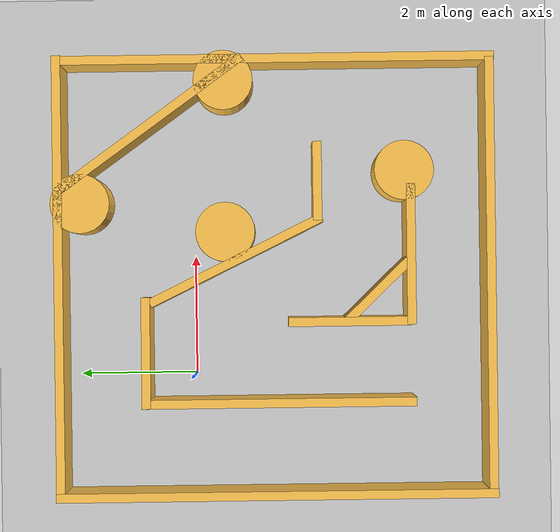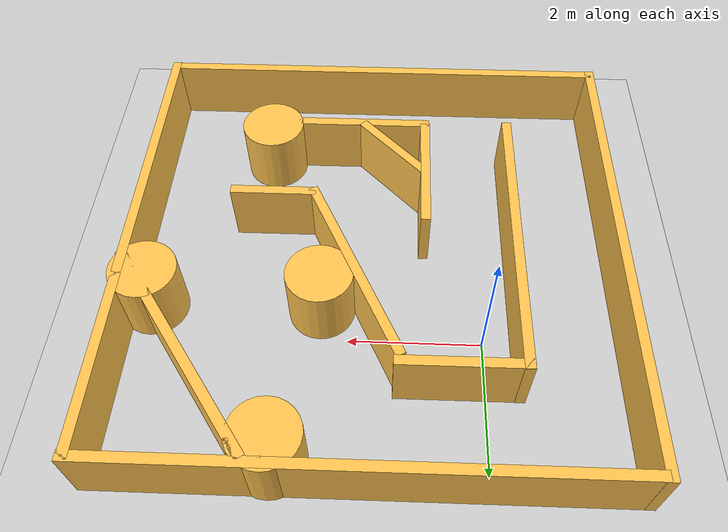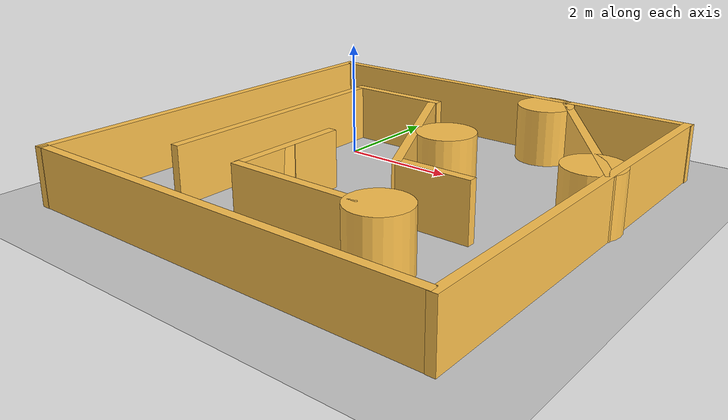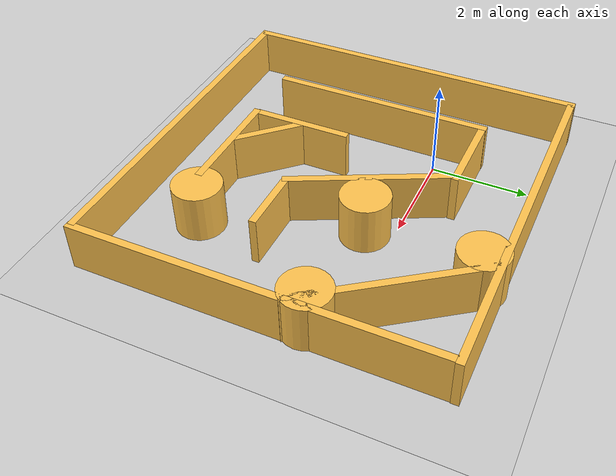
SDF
<sdf version="1.4">
 <world name="default">
  <plugin name="gazebo_ros_state" filename="libgazebo_ros_state.so">
   <ros><namespace>/pr2</namespace></ros>
  </plugin>
  <light name="sun" type="directional">
   <pose>0 0 10 0 -0 0</pose>
   <diffuse>0.8 0.8 0.8 1</diffuse>
   <specular>0.2 0.2 0.2 1</specular>
   <attenuation>
    <range>1000</range>
    <constant>0.9</constant>
    <linear>0.01</linear>
    <quadratic>0.001</quadratic>
   </attenuation>
   <direction>0.5 0.1 -0.9</direction>
  </light>
  <model name="ground_plane">
   <static>1</static>
   <link name="link">
    <collision name="collision">
     <geometry><plane><normal>0 0 1</normal><size>100 100</size></plane></geometry>
     <surface><friction><ode><mu>100</mu><mu2>50</mu2></ode></friction></surface>
    </collision>
    <visual name="visual">
     <cast_shadows>0</cast_shadows>
     <geometry><plane><normal>0 0 1</normal><size>100 100</size></plane></geometry>
     <material>
      <script><uri>file://media/materials/scripts/gazebo.material</uri><name>Gazebo/Grey</name></script>
     </material>
    </visual>
    <velocity_decay><linear>0</linear><angular>0</angular></velocity_decay>
   </link>
  </model>
  <scene><ambient>0.4 0.4 0.4 1</ambient><background>0.7 0.7 0.7 1</background><shadows>0</shadows></scene>
  <physics type="ode">
   <max_step_size>0.01</max_step_size>
   <real_time_factor>1</real_time_factor>
   <real_time_update_rate>0</real_time_update_rate>
   <gravity>0 0 -9.8</gravity>
  </physics>
  <include><uri>model://small_warehouse</uri><pose>2.4 -2.1 0 0 0 0</pose></include>
 </world>
</sdf>

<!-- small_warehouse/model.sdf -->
<sdf version='1.5'>
  <model name='small_warehouse'>
    <link name='Wall_10'>
      <pose frame=''>-2.02568 2.92333 0 0 -0 3.14159</pose>
      <self_collide>0</self_collide>
      <kinematic>0</kinematic>
      <visual name='Wall_10_Visual'>
        <pose frame=''>0 0 0.5 0 -0 0</pose>
        <geometry>
          <box>
            <size>1.8711 0.15 1</size>
          </box>
        </geometry>
        <material>
          <script>
            <uri>file://media/materials/scripts/gazebo.material</uri>
            <name>Gazebo/Grey</name>
          </script>
          <ambient>1 0.764706 0.305882 1</ambient>
          <diffuse>0.7 0.7 0.7 1</diffuse>
          <specular>0.01 0.01 0.01 1</specular>
          <emissive>0 0 0 1</emissive>
          <shader type='pixel'/>
        </material>
        <cast_shadows>1</cast_shadows>
        <transparency>0</transparency>
      </visual>
      <collision name='Wall_10_Collision'>
        <laser_retro>0</laser_retro>
        <max_contacts>10</max_contacts>
        <pose frame=''>0 0 0.5 0 -0 0</pose>
        <geometry>
          <box>
            <size>1.8711 0.15 1</size>
          </box>
        </geometry>
        <surface>
          <friction>
            <ode>
              <mu>1</mu>
              <mu2>1</mu2>
              <fdir1>0 0 0</fdir1>
              <slip1>0</slip1>
              <slip2>0</slip2>
            </ode>
          </friction>
          <bounce>
            <restitution_coefficient>0</restitution_coefficient>
            <threshold>1e+06</threshold>
          </bounce>
          <contact>
            <collide_without_contact>0</collide_without_contact>
            <collide_without_contact_bitmask>1</collide_without_contact_bitmask>
            <collide_bitmask>1</collide_bitmask>
            <ode>
              <soft_cfm>0</soft_cfm>
              <soft_erp>0.2</soft_erp>
              <kp>1e+13</kp>
              <kd>1</kd>
              <max_vel>0.01</max_vel>
              <min_depth>0</min_depth>
            </ode>
            <bullet>
              <split_impulse>1</split_impulse>
              <split_impulse_penetration_threshold>-0.01</split_impulse_penetration_threshold>
              <soft_cfm>0</soft_cfm>
              <soft_erp>0.2</soft_erp>
              <kp>1e+13</kp>
              <kd>1</kd>
            </bullet>
          </contact>
        </surface>
      </collision>
    </link>
    <link name='Wall_11'>
      <pose frame=''>-2.887 0.69235 0 0 0 -1.5708</pose>
      <self_collide>0</self_collide>
      <kinematic>0</kinematic>
      <visual name='Wall_11_Visual'>
        <pose frame=''>0 0 0.5 0 -0 0</pose>
        <geometry>
          <box>
            <size>4.62378 0.15 1</size>
          </box>
        </geometry>
        <material>
          <script>
            <uri>file://media/materials/scripts/gazebo.material</uri>
            <name>Gazebo/Grey</name>
          </script>
          <ambient>1 0.764706 0.305882 1</ambient>
          <diffuse>0.7 0.7 0.7 1</diffuse>
          <specular>0.01 0.01 0.01 1</specular>
          <emissive>0 0 0 1</emissive>
          <shader type='pixel'/>
        </material>
        <cast_shadows>1</cast_shadows>
        <transparency>0</transparency>
      </visual>
      <collision name='Wall_11_Collision'>
        <laser_retro>0</laser_retro>
        <max_contacts>10</max_contacts>
        <pose frame=''>0 0 0.5 0 -0 0</pose>
        <geometry>
          <box>
            <size>4.62378 0.15 1</size>
          </box>
        </geometry>
        <surface>
          <friction>
            <ode>
              <mu>1</mu>
              <mu2>1</mu2>
              <fdir1>0 0 0</fdir1>
              <slip1>0</slip1>
              <slip2>0</slip2>
            </ode>
          </friction>
          <bounce>
            <restitution_coefficient>0</restitution_coefficient>
            <threshold>1e+06</threshold>
          </bounce>
          <contact>
            <collide_without_contact>0</collide_without_contact>
            <collide_without_contact_bitmask>1</collide_without_contact_bitmask>
            <collide_bitmask>1</collide_bitmask>
            <ode>
              <soft_cfm>0</soft_cfm>
              <soft_erp>0.2</soft_erp>
              <kp>1e+13</kp>
              <kd>1</kd>
              <max_vel>0.01</max_vel>
              <min_depth>0</min_depth>
            </ode>
            <bullet>
              <split_impulse>1</split_impulse>
              <split_impulse_penetration_threshold>-0.01</split_impulse_penetration_threshold>
              <soft_cfm>0</soft_cfm>
              <soft_erp>0.2</soft_erp>
              <kp>1e+13</kp>
              <kd>1</kd>
            </bullet>
          </contact>
        </surface>
      </collision>
    </link>
    <link name='Wall_11_clone'>
      <pose frame=''>-4.44208 0.738947 0 0 0 -1.5708</pose>
      <self_collide>0</self_collide>
      <kinematic>0</kinematic>
      <visual name='ModelPreview_2::Wall_11_clone::Wall_11_Visual'>
        <pose frame=''>0 0 0.5 0 -0 0</pose>
        <geometry>
          <box>
            <size>7.42809 0.15 1</size>
          </box>
        </geometry>
        <material>
          <script>
            <uri>file://media/materials/scripts/gazebo.material</uri>
            <name>Gazebo/Grey</name>
          </script>
          <ambient>1 0.764706 0.305882 1</ambient>
          <diffuse>0.7 0.7 0.7 1</diffuse>
          <specular>0.01 0.01 0.01 1</specular>
          <emissive>0 0 0 1</emissive>
          <shader type='pixel'/>
        </material>
        <cast_shadows>1</cast_shadows>
        <transparency>0</transparency>
      </visual>
      <collision name='Wall_11_Collision'>
        <laser_retro>0</laser_retro>
        <max_contacts>10</max_contacts>
        <pose frame=''>0 0 0.5 0 -0 0</pose>
        <geometry>
          <box>
            <size>7.42809 0.15 1</size>
          </box>
        </geometry>
        <surface>
          <friction>
            <ode>
              <mu>1</mu>
              <mu2>1</mu2>
              <fdir1>0 0 0</fdir1>
              <slip1>0</slip1>
              <slip2>0</slip2>
            </ode>
          </friction>
          <bounce>
            <restitution_coefficient>0</restitution_coefficient>
            <threshold>1e+06</threshold>
          </bounce>
          <contact>
            <collide_without_contact>0</collide_without_contact>
            <collide_without_contact_bitmask>1</collide_without_contact_bitmask>
            <collide_bitmask>1</collide_bitmask>
            <ode>
              <soft_cfm>0</soft_cfm>
              <soft_erp>0.2</soft_erp>
              <kp>1e+13</kp>
              <kd>1</kd>
              <max_vel>0.01</max_vel>
              <min_depth>0</min_depth>
            </ode>
            <bullet>
              <split_impulse>1</split_impulse>
              <split_impulse_penetration_threshold>-0.01</split_impulse_penetration_threshold>
              <soft_cfm>0</soft_cfm>
              <soft_erp>0.2</soft_erp>
              <kp>1e+13</kp>
              <kd>1</kd>
            </bullet>
          </contact>
        </surface>
      </collision>
    </link>
    <link name='Wall_14'>
      <pose frame=''>-0.409926 -1.55115 0 0 -0 3.14159</pose>
      <self_collide>0</self_collide>
      <kinematic>0</kinematic>
      <visual name='Wall_14_Visual'>
        <pose frame=''>0 0 0.5 0 -0 0</pose>
        <geometry>
          <box>
            <size>2.36648 0.15 1</size>
          </box>
        </geometry>
        <material>
          <script>
            <uri>file://media/materials/scripts/gazebo.material</uri>
            <name>Gazebo/Grey</name>
          </script>
          <ambient>1 0.764706 0.305882 1</ambient>
          <diffuse>0.7 0.7 0.7 1</diffuse>
          <specular>0.01 0.01 0.01 1</specular>
          <emissive>0 0 0 1</emissive>
          <shader type='pixel'/>
        </material>
        <cast_shadows>1</cast_shadows>
        <transparency>0</transparency>
      </visual>
      <collision name='Wall_14_Collision'>
        <laser_retro>0</laser_retro>
        <max_contacts>10</max_contacts>
        <pose frame=''>0 0 0.5 0 -0 0</pose>
        <geometry>
          <box>
            <size>2.36648 0.15 1</size>
          </box>
        </geometry>
        <surface>
          <friction>
            <ode>
              <mu>1</mu>
              <mu2>1</mu2>
              <fdir1>0 0 0</fdir1>
              <slip1>0</slip1>
              <slip2>0</slip2>
            </ode>
          </friction>
          <bounce>
            <restitution_coefficient>0</restitution_coefficient>
            <threshold>1e+06</threshold>
          </bounce>
          <contact>
            <collide_without_contact>0</collide_without_contact>
            <collide_without_contact_bitmask>1</collide_without_contact_bitmask>
            <collide_bitmask>1</collide_bitmask>
            <ode>
              <soft_cfm>0</soft_cfm>
              <soft_erp>0.2</soft_erp>
              <kp>1e+13</kp>
              <kd>1</kd>
              <max_vel>0.01</max_vel>
              <min_depth>0</min_depth>
            </ode>
            <bullet>
              <split_impulse>1</split_impulse>
              <split_impulse_penetration_threshold>-0.01</split_impulse_penetration_threshold>
              <soft_cfm>0</soft_cfm>
              <soft_erp>0.2</soft_erp>
              <kp>1e+13</kp>
              <kd>1</kd>
            </bullet>
          </contact>
        </surface>
      </collision>
    </link>
    <link name='Wall_15'>
      <pose frame=''>-1.53187 -0.513425 0 0 -0 1.5708</pose>
      <self_collide>0</self_collide>
      <kinematic>0</kinematic>
      <visual name='Wall_15_Visual'>
        <pose frame=''>0 0 0.5 0 -0 0</pose>
        <geometry>
          <box>
            <size>2.06622 0.15 1</size>
          </box>
        </geometry>
        <material>
          <script>
            <uri>file://media/materials/scripts/gazebo.material</uri>
            <name>Gazebo/Grey</name>
          </script>
          <ambient>1 0.764706 0.305882 1</ambient>
          <diffuse>0.7 0.7 0.7 1</diffuse>
          <specular>0.01 0.01 0.01 1</specular>
          <emissive>0 0 0 1</emissive>
          <shader type='pixel'/>
        </material>
        <cast_shadows>1</cast_shadows>
        <transparency>0</transparency>
      </visual>
      <collision name='Wall_15_Collision'>
        <laser_retro>0</laser_retro>
        <max_contacts>10</max_contacts>
        <pose frame=''>0 0 0.5 0 -0 0</pose>
        <geometry>
          <box>
            <size>2.06622 0.15 1</size>
          </box>
        </geometry>
        <surface>
          <friction>
            <ode>
              <mu>1</mu>
              <mu2>1</mu2>
              <fdir1>0 0 0</fdir1>
              <slip1>0</slip1>
              <slip2>0</slip2>
            </ode>
          </friction>
          <bounce>
            <restitution_coefficient>0</restitution_coefficient>
            <threshold>1e+06</threshold>
          </bounce>
          <contact>
            <collide_without_contact>0</collide_without_contact>
            <collide_without_contact_bitmask>1</collide_without_contact_bitmask>
            <collide_bitmask>1</collide_bitmask>
            <ode>
              <soft_cfm>0</soft_cfm>
              <soft_erp>0.2</soft_erp>
              <kp>1e+13</kp>
              <kd>1</kd>
              <max_vel>0.01</max_vel>
              <min_depth>0</min_depth>
            </ode>
            <bullet>
              <split_impulse>1</split_impulse>
              <split_impulse_penetration_threshold>-0.01</split_impulse_penetration_threshold>
              <soft_cfm>0</soft_cfm>
              <soft_erp>0.2</soft_erp>
              <kp>1e+13</kp>
              <kd>1</kd>
            </bullet>
          </contact>
        </surface>
      </collision>
    </link>
    <link name='Wall_19'>
      <pose frame=''>0.837565 0.010614 0 0 -0 3.14159</pose>
      <self_collide>0</self_collide>
      <kinematic>0</kinematic>
      <visual name='Wall_19_Visual'>
        <pose frame=''>0 0 0.5 0 -0 0</pose>
        <geometry>
          <box>
            <size>1.32777 0.15 1</size>
          </box>
        </geometry>
        <material>
          <script>
            <uri>file://media/materials/scripts/gazebo.material</uri>
            <name>Gazebo/Grey</name>
          </script>
          <ambient>1 0.764706 0.305882 1</ambient>
          <diffuse>0.7 0.7 0.7 1</diffuse>
          <specular>0.01 0.01 0.01 1</specular>
          <emissive>0 0 0 1</emissive>
          <shader type='pixel'/>
        </material>
        <cast_shadows>1</cast_shadows>
        <transparency>0</transparency>
      </visual>
      <collision name='Wall_19_Collision'>
        <laser_retro>0</laser_retro>
        <max_contacts>10</max_contacts>
        <pose frame=''>0 0 0.5 0 -0 0</pose>
        <geometry>
          <box>
            <size>1.32777 0.15 1</size>
          </box>
        </geometry>
        <surface>
          <friction>
            <ode>
              <mu>1</mu>
              <mu2>1</mu2>
              <fdir1>0 0 0</fdir1>
              <slip1>0</slip1>
              <slip2>0</slip2>
            </ode>
          </friction>
          <bounce>
            <restitution_coefficient>0</restitution_coefficient>
            <threshold>1e+06</threshold>
          </bounce>
          <contact>
            <collide_without_contact>0</collide_without_contact>
            <collide_without_contact_bitmask>1</collide_without_contact_bitmask>
            <collide_bitmask>1</collide_bitmask>
            <ode>
              <soft_cfm>0</soft_cfm>
              <soft_erp>0.2</soft_erp>
              <kp>1e+13</kp>
              <kd>1</kd>
              <max_vel>0.01</max_vel>
              <min_depth>0</min_depth>
            </ode>
            <bullet>
              <split_impulse>1</split_impulse>
              <split_impulse_penetration_threshold>-0.01</split_impulse_penetration_threshold>
              <soft_cfm>0</soft_cfm>
              <soft_erp>0.2</soft_erp>
              <kp>1e+13</kp>
              <kd>1</kd>
            </bullet>
          </contact>
        </surface>
      </collision>
    </link>
    <link name='Wall_20'>
      <pose frame=''>-0.484506 1.39698 0 0 -0 2.02352</pose>
      <self_collide>0</self_collide>
      <kinematic>0</kinematic>
      <visual name='Wall_20_Visual'>
        <pose frame=''>0 0 0.5 0 -0 0</pose>
        <geometry>
          <box>
            <size>3.22686 0.15 1</size>
          </box>
        </geometry>
        <material>
          <script>
            <uri>file://media/materials/scripts/gazebo.material</uri>
            <name>Gazebo/Grey</name>
          </script>
          <ambient>1 0.764706 0.305882 1</ambient>
          <diffuse>0.7 0.7 0.7 1</diffuse>
          <specular>0.01 0.01 0.01 1</specular>
          <emissive>0 0 0 1</emissive>
          <shader type='pixel'/>
        </material>
        <cast_shadows>1</cast_shadows>
        <transparency>0</transparency>
      </visual>
      <collision name='Wall_20_Collision'>
        <laser_retro>0</laser_retro>
        <max_contacts>10</max_contacts>
        <pose frame=''>0 0 0.5 0 -0 0</pose>
        <geometry>
          <box>
            <size>3.22686 0.15 1</size>
          </box>
        </geometry>
        <surface>
          <friction>
            <ode>
              <mu>1</mu>
              <mu2>1</mu2>
              <fdir1>0 0 0</fdir1>
              <slip1>0</slip1>
              <slip2>0</slip2>
            </ode>
          </friction>
          <bounce>
            <restitution_coefficient>0</restitution_coefficient>
            <threshold>1e+06</threshold>
          </bounce>
          <contact>
            <collide_without_contact>0</collide_without_contact>
            <collide_without_contact_bitmask>1</collide_without_contact_bitmask>
            <collide_bitmask>1</collide_bitmask>
            <ode>
              <soft_cfm>0</soft_cfm>
              <soft_erp>0.2</soft_erp>
              <kp>1e+13</kp>
              <kd>1</kd>
              <max_vel>0.01</max_vel>
              <min_depth>0</min_depth>
            </ode>
            <bullet>
              <split_impulse>1</split_impulse>
              <split_impulse_penetration_threshold>-0.01</split_impulse_penetration_threshold>
              <soft_cfm>0</soft_cfm>
              <soft_erp>0.2</soft_erp>
              <kp>1e+13</kp>
              <kd>1</kd>
            </bullet>
          </contact>
        </surface>
      </collision>
    </link>
    <link name='Wall_24'>
      <pose frame=''>1.8412 2.79579 0 0 0 -0.948986</pose>
      <self_collide>0</self_collide>
      <kinematic>0</kinematic>
      <visual name='Wall_24_Visual'>
        <pose frame=''>0 0 0.5 0 -0 0</pose>
        <geometry>
          <box>
            <size>3.76645 0.15 1</size>
          </box>
        </geometry>
        <material>
          <script>
            <uri>file://media/materials/scripts/gazebo.material</uri>
            <name>Gazebo/Grey</name>
          </script>
          <ambient>1 0.764706 0.305882 1</ambient>
          <diffuse>0.7 0.7 0.7 1</diffuse>
          <specular>0.01 0.01 0.01 1</specular>
          <emissive>0 0 0 1</emissive>
          <shader type='pixel'/>
        </material>
        <cast_shadows>1</cast_shadows>
        <transparency>0</transparency>
      </visual>
      <collision name='Wall_24_Collision'>
        <laser_retro>0</laser_retro>
        <max_contacts>10</max_contacts>
        <pose frame=''>0 0 0.5 0 -0 0</pose>
        <geometry>
          <box>
            <size>3.76645 0.15 1</size>
          </box>
        </geometry>
        <surface>
          <friction>
            <ode>
              <mu>1</mu>
              <mu2>1</mu2>
              <fdir1>0 0 0</fdir1>
              <slip1>0</slip1>
              <slip2>0</slip2>
            </ode>
          </friction>
          <bounce>
            <restitution_coefficient>0</restitution_coefficient>
            <threshold>1e+06</threshold>
          </bounce>
          <contact>
            <collide_without_contact>0</collide_without_contact>
            <collide_without_contact_bitmask>1</collide_without_contact_bitmask>
            <collide_bitmask>1</collide_bitmask>
            <ode>
              <soft_cfm>0</soft_cfm>
              <soft_erp>0.2</soft_erp>
              <kp>1e+13</kp>
              <kd>1</kd>
              <max_vel>0.01</max_vel>
              <min_depth>0</min_depth>
            </ode>
            <bullet>
              <split_impulse>1</split_impulse>
              <split_impulse_penetration_threshold>-0.01</split_impulse_penetration_threshold>
              <soft_cfm>0</soft_cfm>
              <soft_erp>0.2</soft_erp>
              <kp>1e+13</kp>
              <kd>1</kd>
            </bullet>
          </contact>
        </surface>
      </collision>
    </link>
    <link name='Wall_24_clone'>
      <pose frame=''>-1.0172 -1.00075 0 0 0 -0.803995</pose>
      <self_collide>0</self_collide>
      <kinematic>0</kinematic>
      <visual name='ModelPreview_2::Wall_24_clone::Wall_24_Visual'>
        <pose frame=''>0 0 0.5 0 -0 0</pose>
        <geometry>
          <box>
            <size>1.5 0.15 1</size>
          </box>
        </geometry>
        <material>
          <script>
            <uri>file://media/materials/scripts/gazebo.material</uri>
            <name>Gazebo/Grey</name>
          </script>
          <ambient>1 0.764706 0.305882 1</ambient>
          <diffuse>0.7 0.7 0.7 1</diffuse>
          <specular>0.01 0.01 0.01 1</specular>
          <emissive>0 0 0 1</emissive>
          <shader type='pixel'/>
        </material>
        <cast_shadows>1</cast_shadows>
        <transparency>0</transparency>
      </visual>
      <collision name='Wall_24_Collision'>
        <laser_retro>0</laser_retro>
        <max_contacts>10</max_contacts>
        <pose frame=''>0 0 0.5 0 -0 0</pose>
        <geometry>
          <box>
            <size>1.5 0.15 1</size>
          </box>
        </geometry>
        <surface>
          <friction>
            <ode>
              <mu>1</mu>
              <mu2>1</mu2>
              <fdir1>0 0 0</fdir1>
              <slip1>0</slip1>
              <slip2>0</slip2>
            </ode>
          </friction>
          <bounce>
            <restitution_coefficient>0</restitution_coefficient>
            <threshold>1e+06</threshold>
          </bounce>
          <contact>
            <collide_without_contact>0</collide_without_contact>
            <collide_without_contact_bitmask>1</collide_without_contact_bitmask>
            <collide_bitmask>1</collide_bitmask>
            <ode>
              <soft_cfm>0</soft_cfm>
              <soft_erp>0.2</soft_erp>
              <kp>1e+13</kp>
              <kd>1</kd>
              <max_vel>0.01</max_vel>
              <min_depth>0</min_depth>
            </ode>
            <bullet>
              <split_impulse>1</split_impulse>
              <split_impulse_penetration_threshold>-0.01</split_impulse_penetration_threshold>
              <soft_cfm>0</soft_cfm>
              <soft_erp>0.2</soft_erp>
              <kp>1e+13</kp>
              <kd>1</kd>
            </bullet>
          </contact>
        </surface>
      </collision>
    </link>
    <link name='Wall_6'>
      <pose frame=''>-0.787021 -2.89307 0 0 -0 0</pose>
      <self_collide>0</self_collide>
      <kinematic>0</kinematic>
      <visual name='Wall_6_Visual'>
        <pose frame=''>0 0 0.5 0 -0 0</pose>
        <geometry>
          <box>
            <size>7.34986 0.15 1</size>
          </box>
        </geometry>
        <material>
          <script>
            <uri>file://media/materials/scripts/gazebo.material</uri>
            <name>Gazebo/Grey</name>
          </script>
          <ambient>1 0.764706 0.305882 1</ambient>
          <diffuse>0.7 0.7 0.7 1</diffuse>
          <specular>0.01 0.01 0.01 1</specular>
          <emissive>0 0 0 1</emissive>
          <shader type='pixel'/>
        </material>
        <cast_shadows>1</cast_shadows>
        <transparency>0</transparency>
      </visual>
      <collision name='Wall_6_Collision'>
        <laser_retro>0</laser_retro>
        <max_contacts>10</max_contacts>
        <pose frame=''>0 0 0.5 0 -0 0</pose>
        <geometry>
          <box>
            <size>7.34986 0.15 1</size>
          </box>
        </geometry>
        <surface>
          <friction>
            <ode>
              <mu>1</mu>
              <mu2>1</mu2>
              <fdir1>0 0 0</fdir1>
              <slip1>0</slip1>
              <slip2>0</slip2>
            </ode>
          </friction>
          <bounce>
            <restitution_coefficient>0</restitution_coefficient>
            <threshold>1e+06</threshold>
          </bounce>
          <contact>
            <collide_without_contact>0</collide_without_contact>
            <collide_without_contact_bitmask>1</collide_without_contact_bitmask>
            <collide_bitmask>1</collide_bitmask>
            <ode>
              <soft_cfm>0</soft_cfm>
              <soft_erp>0.2</soft_erp>
              <kp>1e+13</kp>
              <kd>1</kd>
              <max_vel>0.01</max_vel>
              <min_depth>0</min_depth>
            </ode>
            <bullet>
              <split_impulse>1</split_impulse>
              <split_impulse_penetration_threshold>-0.01</split_impulse_penetration_threshold>
              <soft_cfm>0</soft_cfm>
              <soft_erp>0.2</soft_erp>
              <kp>1e+13</kp>
              <kd>1</kd>
            </bullet>
          </contact>
        </surface>
      </collision>
    </link>
    <link name='Wall_6_clone'>
      <pose frame=''>-0.718431 4.37517 0 0 -0 0</pose>
      <self_collide>0</self_collide>
      <kinematic>0</kinematic>
      <visual name='ModelPreview_2::Wall_6_clone::Wall_6_Visual'>
        <pose frame=''>0 0 0.5 0 -0 0</pose>
        <geometry>
          <box>
            <size>7.41907 0.15 1</size>
          </box>
        </geometry>
        <material>
          <script>
            <uri>file://media/materials/scripts/gazebo.material</uri>
            <name>Gazebo/Grey</name>
          </script>
          <ambient>1 0.764706 0.305882 1</ambient>
          <diffuse>0.7 0.7 0.7 1</diffuse>
          <specular>0.01 0.01 0.01 1</specular>
          <emissive>0 0 0 1</emissive>
          <shader type='pixel'/>
        </material>
        <cast_shadows>1</cast_shadows>
        <transparency>0</transparency>
      </visual>
      <collision name='Wall_6_Collision'>
        <laser_retro>0</laser_retro>
        <max_contacts>10</max_contacts>
        <pose frame=''>0 0 0.5 0 -0 0</pose>
        <geometry>
          <box>
            <size>7.41907 0.15 1</size>
          </box>
        </geometry>
        <surface>
          <friction>
            <ode>
              <mu>1</mu>
              <mu2>1</mu2>
              <fdir1>0 0 0</fdir1>
              <slip1>0</slip1>
              <slip2>0</slip2>
            </ode>
          </friction>
          <bounce>
            <restitution_coefficient>0</restitution_coefficient>
            <threshold>1e+06</threshold>
          </bounce>
          <contact>
            <collide_without_contact>0</collide_without_contact>
            <collide_without_contact_bitmask>1</collide_without_contact_bitmask>
            <collide_bitmask>1</collide_bitmask>
            <ode>
              <soft_cfm>0</soft_cfm>
              <soft_erp>0.2</soft_erp>
              <kp>1e+13</kp>
              <kd>1</kd>
              <max_vel>0.01</max_vel>
              <min_depth>0</min_depth>
            </ode>
            <bullet>
              <split_impulse>1</split_impulse>
              <split_impulse_penetration_threshold>-0.01</split_impulse_penetration_threshold>
              <soft_cfm>0</soft_cfm>
              <soft_erp>0.2</soft_erp>
              <kp>1e+13</kp>
              <kd>1</kd>
            </bullet>
          </contact>
        </surface>
      </collision>
    </link>
    <link name='Wall_7'>
      <pose frame=''>2.90228 0.736783 0 0 -0 1.5708</pose>
      <self_collide>0</self_collide>
      <kinematic>0</kinematic>
      <visual name='Wall_7_Visual'>
        <pose frame=''>0 0 0.5 0 -0 0</pose>
        <geometry>
          <box>
            <size>7.42238 0.15 1</size>
          </box>
        </geometry>
        <material>
          <script>
            <uri>file://media/materials/scripts/gazebo.material</uri>
            <name>Gazebo/Grey</name>
          </script>
          <ambient>1 0.764706 0.305882 1</ambient>
          <diffuse>0.7 0.7 0.7 1</diffuse>
          <specular>0.01 0.01 0.01 1</specular>
          <emissive>0 0 0 1</emissive>
          <shader type='pixel'/>
        </material>
        <cast_shadows>1</cast_shadows>
        <transparency>0</transparency>
      </visual>
      <collision name='Wall_7_Collision'>
        <laser_retro>0</laser_retro>
        <max_contacts>10</max_contacts>
        <pose frame=''>0 0 0.5 0 -0 0</pose>
        <geometry>
          <box>
            <size>7.42238 0.15 1</size>
          </box>
        </geometry>
        <surface>
          <friction>
            <ode>
              <mu>1</mu>
              <mu2>1</mu2>
              <fdir1>0 0 0</fdir1>
              <slip1>0</slip1>
              <slip2>0</slip2>
            </ode>
          </friction>
          <bounce>
            <restitution_coefficient>0</restitution_coefficient>
            <threshold>1e+06</threshold>
          </bounce>
          <contact>
            <collide_without_contact>0</collide_without_contact>
            <collide_without_contact_bitmask>1</collide_without_contact_bitmask>
            <collide_bitmask>1</collide_bitmask>
            <ode>
              <soft_cfm>0</soft_cfm>
              <soft_erp>0.2</soft_erp>
              <kp>1e+13</kp>
              <kd>1</kd>
              <max_vel>0.01</max_vel>
              <min_depth>0</min_depth>
            </ode>
            <bullet>
              <split_impulse>1</split_impulse>
              <split_impulse_penetration_threshold>-0.01</split_impulse_penetration_threshold>
              <soft_cfm>0</soft_cfm>
              <soft_erp>0.2</soft_erp>
              <kp>1e+13</kp>
              <kd>1</kd>
            </bullet>
          </contact>
        </surface>
      </collision>
    </link>
    <link name='link_1'>
      <pose frame=''>1 -1.44562 0.5 0 -0 0</pose>
      <visual name='visual'>
        <pose frame=''>0 0 0 0 -0 0</pose>
        <geometry>
          <cylinder>
            <radius>0.5</radius>
            <length>1</length>
          </cylinder>
        </geometry>
        <material>
          <script>
            <uri>file://media/materials/scripts/gazebo.material</uri>
            <name>Gazebo/Grey</name>
          </script>
          <ambient>1 0.764706 0.305882 1</ambient>
          <diffuse>0.7 0.7 0.7 1</diffuse>
          <specular>0.01 0.01 0.01 1</specular>
          <emissive>0 0 0 1</emissive>
          <shader type='pixel'/>
        </material>
        <cast_shadows>1</cast_shadows>
        <transparency>0</transparency>
      </visual>
      <collision name='collision'>
        <laser_retro>0</laser_retro>
        <max_contacts>10</max_contacts>
        <pose frame=''>0 0 0 0 -0 0</pose>
        <geometry>
          <cylinder>
            <radius>0.5</radius>
            <length>1</length>
          </cylinder>
        </geometry>
        <surface>
          <friction>
            <ode>
              <mu>1</mu>
              <mu2>1</mu2>
              <fdir1>0 0 0</fdir1>
              <slip1>0</slip1>
              <slip2>0</slip2>
            </ode>
          </friction>
          <bounce>
            <restitution_coefficient>0</restitution_coefficient>
            <threshold>1e+06</threshold>
          </bounce>
          <contact>
            <collide_without_contact>0</collide_without_contact>
            <collide_without_contact_bitmask>1</collide_without_contact_bitmask>
            <collide_bitmask>1</collide_bitmask>
            <ode>
              <soft_cfm>0</soft_cfm>
              <soft_erp>0.2</soft_erp>
              <kp>1e+13</kp>
              <kd>1</kd>
              <max_vel>0.01</max_vel>
              <min_depth>0</min_depth>
            </ode>
            <bullet>
              <split_impulse>1</split_impulse>
              <split_impulse_penetration_threshold>-0.01</split_impulse_penetration_threshold>
              <soft_cfm>0</soft_cfm>
              <soft_erp>0.2</soft_erp>
              <kp>1e+13</kp>
              <kd>1</kd>
            </bullet>
          </contact>
        </surface>
      </collision>
    </link>
    <link name='link_2'>
      <pose frame=''>0.498835 4 0.5 0 -0 0</pose>
      <visual name='visual'>
        <pose frame=''>0 0 0 0 -0 0</pose>
        <geometry>
          <cylinder>
            <radius>0.5</radius>
            <length>1</length>
          </cylinder>
        </geometry>
        <material>
          <script>
            <uri>file://media/materials/scripts/gazebo.material</uri>
            <name>Gazebo/Grey</name>
          </script>
          <ambient>1 0.764706 0.305882 1</ambient>
          <diffuse>0.7 0.7 0.7 1</diffuse>
          <specular>0.01 0.01 0.01 1</specular>
          <emissive>0 0 0 1</emissive>
          <shader type='pixel'/>
        </material>
        <cast_shadows>1</cast_shadows>
        <transparency>0</transparency>
        <cast_shadows>1</cast_shadows>
        <transparency>0</transparency>
      </visual>
      <collision name='collision'>
        <laser_retro>0</laser_retro>
        <max_contacts>10</max_contacts>
        <pose frame=''>0 0 0 0 -0 0</pose>
        <geometry>
          <cylinder>
            <radius>0.5</radius>
            <length>1</length>
          </cylinder>
        </geometry>
        <surface>
          <friction>
            <ode>
              <mu>1</mu>
              <mu2>1</mu2>
              <fdir1>0 0 0</fdir1>
              <slip1>0</slip1>
              <slip2>0</slip2>
            </ode>
          </friction>
          <bounce>
            <restitution_coefficient>0</restitution_coefficient>
            <threshold>1e+06</threshold>
          </bounce>
          <contact>
            <collide_without_contact>0</collide_without_contact>
            <collide_without_contact_bitmask>1</collide_without_contact_bitmask>
            <collide_bitmask>1</collide_bitmask>
            <ode>
              <soft_cfm>0</soft_cfm>
              <soft_erp>0.2</soft_erp>
              <kp>1e+13</kp>
              <kd>1</kd>
              <max_vel>0.01</max_vel>
              <min_depth>0</min_depth>
            </ode>
            <bullet>
              <split_impulse>1</split_impulse>
              <split_impulse_penetration_threshold>-0.01</split_impulse_penetration_threshold>
              <soft_cfm>0</soft_cfm>
              <soft_erp>0.2</soft_erp>
              <kp>1e+13</kp>
              <kd>1</kd>
            </bullet>
          </contact>
        </surface>
      </collision>
    </link>
    <link name='link_3'>
      <pose frame=''>0 1.56543 0.5 0 -0 0</pose>
      <visual name='visual'>
        <pose frame=''>0 0 0 0 -0 0</pose>
        <geometry>
          <cylinder>
            <radius>0.5</radius>
            <length>1</length>
          </cylinder>
        </geometry>
        <material>
          <script>
            <uri>file://media/materials/scripts/gazebo.material</uri>
            <name>Gazebo/Grey</name>
          </script>
          <ambient>1 0.764706 0.305882 1</ambient>
          <diffuse>0.7 0.7 0.7 1</diffuse>
          <specular>0.01 0.01 0.01 1</specular>
          <emissive>0 0 0 1</emissive>
          <shader type='pixel'/>
        </material>
        <cast_shadows>1</cast_shadows>
        <transparency>0</transparency>
        <cast_shadows>1</cast_shadows>
        <transparency>0</transparency>
      </visual>
      <collision name='collision'>
        <laser_retro>0</laser_retro>
        <max_contacts>10</max_contacts>
        <pose frame=''>0 0 0 0 -0 0</pose>
        <geometry>
          <cylinder>
            <radius>0.5</radius>
            <length>1</length>
          </cylinder>
        </geometry>
        <surface>
          <friction>
            <ode>
              <mu>1</mu>
              <mu2>1</mu2>
              <fdir1>0 0 0</fdir1>
              <slip1>0</slip1>
              <slip2>0</slip2>
            </ode>
          </friction>
          <bounce>
            <restitution_coefficient>0</restitution_coefficient>
            <threshold>1e+06</threshold>
          </bounce>
          <contact>
            <collide_without_contact>0</collide_without_contact>
            <collide_without_contact_bitmask>1</collide_without_contact_bitmask>
            <collide_bitmask>1</collide_bitmask>
            <ode>
              <soft_cfm>0</soft_cfm>
              <soft_erp>0.2</soft_erp>
              <kp>1e+13</kp>
              <kd>1</kd>
              <max_vel>0.01</max_vel>
              <min_depth>0</min_depth>
            </ode>
            <bullet>
              <split_impulse>1</split_impulse>
              <split_impulse_penetration_threshold>-0.01</split_impulse_penetration_threshold>
              <soft_cfm>0</soft_cfm>
              <soft_erp>0.2</soft_erp>
              <kp>1e+13</kp>
              <kd>1</kd>
            </bullet>
          </contact>
        </surface>
      </collision>
    </link>
    <link name='link_4'>
      <pose frame=''>2.54621 1.57728 0.5 0 -0 0</pose>
      <visual name='visual'>
        <pose frame=''>0 0 0 0 -0 0</pose>
        <geometry>
          <cylinder>
            <radius>0.5</radius>
            <length>1</length>
          </cylinder>
        </geometry>
        <material>
          <script>
            <uri>file://media/materials/scripts/gazebo.material</uri>
            <name>Gazebo/Grey</name>
          </script>
          <ambient>1 0.764706 0.305882 1</ambient>
          <diffuse>0.7 0.7 0.7 1</diffuse>
          <specular>0.01 0.01 0.01 1</specular>
          <emissive>0 0 0 1</emissive>
          <shader type='pixel'/>
        </material>
        <cast_shadows>1</cast_shadows>
        <transparency>0</transparency>
        <cast_shadows>1</cast_shadows>
        <transparency>0</transparency>
      </visual>
      <collision name='collision'>
        <laser_retro>0</laser_retro>
        <max_contacts>10</max_contacts>
        <pose frame=''>0 0 0 0 -0 0</pose>
        <geometry>
          <cylinder>
            <radius>0.5</radius>
            <length>1</length>
          </cylinder>
        </geometry>
        <surface>
          <friction>
            <ode>
              <mu>1</mu>
              <mu2>1</mu2>
              <fdir1>0 0 0</fdir1>
              <slip1>0</slip1>
              <slip2>0</slip2>
            </ode>
          </friction>
          <bounce>
            <restitution_coefficient>0</restitution_coefficient>
            <threshold>1e+06</threshold>
          </bounce>
          <contact>
            <collide_without_contact>0</collide_without_contact>
            <collide_without_contact_bitmask>1</collide_without_contact_bitmask>
            <collide_bitmask>1</collide_bitmask>
            <ode>
              <soft_cfm>0</soft_cfm>
              <soft_erp>0.2</soft_erp>
              <kp>1e+13</kp>
              <kd>1</kd>
              <max_vel>0.01</max_vel>
              <min_depth>0</min_depth>
            </ode>
            <bullet>
              <split_impulse>1</split_impulse>
              <split_impulse_penetration_threshold>-0.01</split_impulse_penetration_threshold>
              <soft_cfm>0</soft_cfm>
              <soft_erp>0.2</soft_erp>
              <kp>1e+13</kp>
              <kd>1</kd>
            </bullet>
          </contact>
        </surface>
      </collision>
    </link>
    <static>1</static>
    <allow_auto_disable>1</allow_auto_disable>
  </model>
</sdf>
